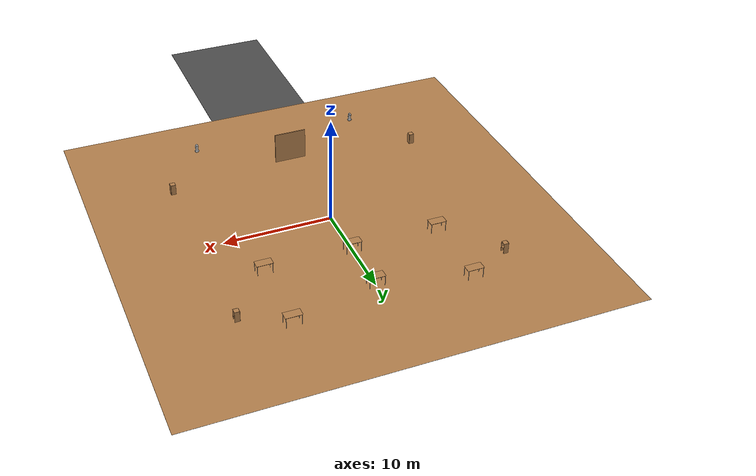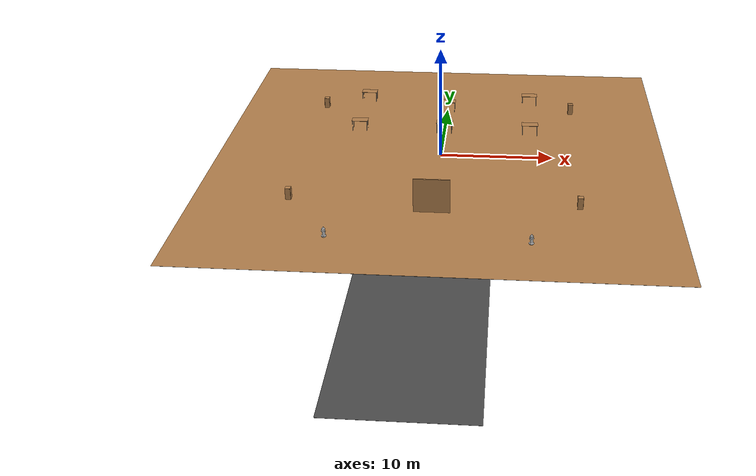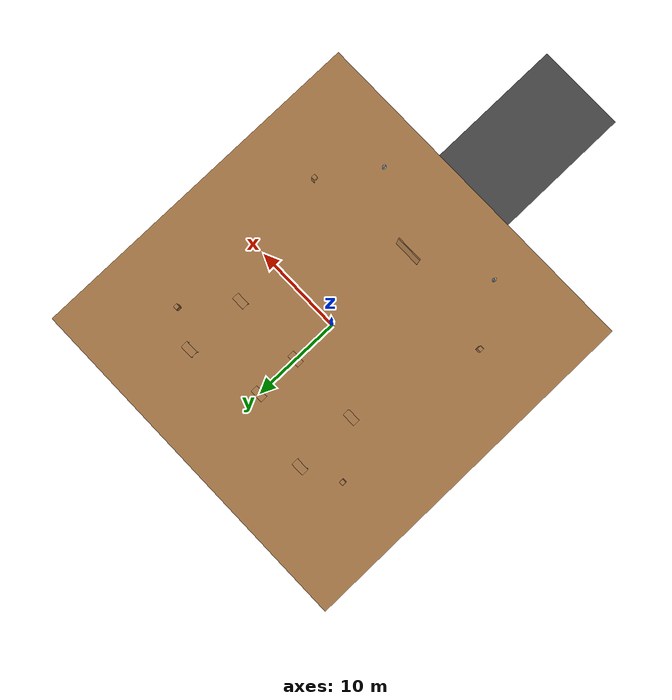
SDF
<sdf version="1.6">
 <world name="hotel_reception_expanded">
  <plugin name="gazebo_ros_state" filename="libgazebo_ros_state.so">
   <ros><namespace>/</namespace></ros>
   <update_rate>1.0</update_rate>
  </plugin>
  <physics type="ode">
   <max_step_size>0.001</max_step_size>
   <real_time_factor>1</real_time_factor>
   <real_time_update_rate>1000</real_time_update_rate>
  </physics>
  <include><uri>model://sun</uri></include>
  <model name="entrance_road">
   <static>true</static>
   <pose>0 -18 0.01 0 0 0</pose>
   <link name="link">
    <collision name="collision"><geometry><box><size>10 35 0.01</size></box></geometry></collision>
    <visual name="visual">
     <geometry><box><size>10 35 0.01</size></box></geometry>
     <material>
      <script><uri>file://media/materials/scripts/gazebo.material</uri><name>Gazebo/Road</name></script>
     </material>
    </visual>
   </link>
  </model>
  <model name="ceramic_floor">
   <static>true</static>
   <link name="link">
    <pose>0 0 0.02 0 0 0</pose>
    <collision name="collision">
     <geometry><box><size>40 40 0.01</size></box></geometry>
     <surface><friction><ode><mu>0.3</mu><mu2>0.3</mu2></ode></friction></surface>
    </collision>
    <visual name="visual">
     <geometry><box><size>40 40 0.01</size></box></geometry>
     <material>
      <script><uri>file://media/materials/scripts/gazebo.material</uri><name>Gazebo/Wood</name></script>
     </material>
    </visual>
   </link>
  </model>
  <model name="entrance_door">
   <static>false</static>
   <pose>0 -10.5 1.5 0 0 0</pose>
   <link name="door">
    <collision name="collision"><geometry><box><size>3 0.1 3</size></box></geometry></collision>
    <visual name="visual">
     <geometry><box><size>3 0.1 3</size></box></geometry>
     <material>
      <script><uri>file://media/materials/scripts/gazebo.material</uri><name>Gazebo/Wood</name></script>
     </material>
    </visual>
    <inertial><mass>10</mass><inertia><ixx>1</ixx><iyy>1</iyy><izz>1</izz></inertia></inertial>
   </link>
  </model>
  <include><uri>model://cabinet</uri><name>cabinet_1</name><pose>-12 -9 0 0 0 0</pose></include>
  <include><uri>model://cabinet</uri><name>cabinet_2</name><pose>12 -9 0 0 0 0</pose></include>
  <include><uri>model://cabinet</uri><name>cabinet_3</name><pose>-12 10 0 0 0 3.14</pose></include>
  <include><uri>model://cabinet</uri><name>cabinet_4</name><pose>12 10 0 0 0 3.14</pose></include>
  <include><uri>model://table</uri><name>lobby_table_1</name><pose>-8 12 0 0 0 0</pose></include>
  <include><uri>model://table</uri><name>lobby_table_2</name><pose>8 12 0 0 0 0</pose></include>
  <include><uri>model://table</uri><name>lobby_table_3</name><pose>-8 5 0 0 0 0</pose></include>
  <include><uri>model://table</uri><name>lobby_table_4</name><pose>8 5 0 0 0 0</pose></include>
  <include><uri>model://table</uri><name>lobby_table_5</name><pose>0 10 0 0 0 0</pose></include>
  <include><uri>model://table</uri><name>lobby_table_6</name><pose>0 5 0 0 0 0</pose></include>
  <include><uri>model://fire_hydrant</uri><name>hydrant_1</name><pose>-8 -15 0 0 0 0</pose></include>
  <include><uri>model://fire_hydrant</uri><name>hydrant_2</name><pose>8 -15 0 0 0 0</pose></include>
  <scene>
   <ambient>0.7 0.7 0.7 1</ambient>
   <background>0.7 0.8 1.0 1</background>
   <shadows>1</shadows>
   <sky><clouds><speed>12</speed></clouds></sky>
  </scene>
 </world>
</sdf>

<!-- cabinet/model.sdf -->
<sdf version="1.5">
  <model name="cabinet">
    <static>true</static>
    <link name="cabinet_bottom_plate">
      <inertial>
        <pose>0 0 -1 0 0 0</pose>
        <inertia>
          <ixx>2.050000</ixx>
          <ixy>0</ixy>
          <ixz>0</ixz>
          <iyy>2.050000</iyy>
          <iyz>0</iyz>
          <izz>2.050000</izz>
        </inertia>
        <mass>25.000000</mass>
      </inertial>
      <collision name="cabinet_bottom_plate_geom">
        <pose>0 0 0.010000 0 0 0</pose>
        <geometry>
          <box>
            <size>0.450000 0.450000 0.020000</size>
          </box>
        </geometry>
      </collision>
      <visual name="cabinet_bottom_plate_geom_visual">
        <pose>0 0 0.010000 0 0 0</pose>
        <geometry>
          <box>
            <size>0.450000 0.450000 0.020000</size>
          </box>
        </geometry>
        <material>
          <script>
            <uri>model://media/materials/scripts/gazebo.material</uri>
            <name>Gazebo/Wood</name>
          </script>
        </material>
      </visual>
      <collision name="cabinet_bottom_plate_geom_cabinet_back_plate">
        <pose>0.235000 0 0.510000 0 0 0</pose>
        <geometry>
          <box>
            <size>0.020000 0.450000 1.020000</size>
          </box>
        </geometry>
      </collision>
      <visual name="cabinet_bottom_plate_geom_cabinet_back_plate_visual">
        <pose>0.235000 0 0.510000 0 0 0</pose>
        <geometry>
          <box>
            <size>0.020000 0.450000 1.020000</size>
          </box>
        </geometry>
        <material>
          <script>
            <uri>model://media/materials/scripts/gazebo.material</uri>
            <name>Gazebo/Wood</name>
          </script>
        </material>
      </visual>
      <collision name="cabinet_bottom_plate_geom_cabinet_left_plate">
        <pose>0 0.235000 0.510000 0 0 0</pose>
        <geometry>
          <box>
            <size>0.450000 0.020000 1.020000</size>
          </box>
        </geometry>
      </collision>
      <visual name="cabinet_bottom_plate_geom_cabinet_left_plate_visual">
        <pose>0 0.235000 0.510000 0 0 0</pose>
        <geometry>
          <box>
            <size>0.450000 0.020000 1.020000</size>
          </box>
        </geometry>
        <material>
          <script>
            <uri>model://media/materials/scripts/gazebo.material</uri>
            <name>Gazebo/Wood</name>
          </script>
        </material>
      </visual>
      <collision name="cabinet_bottom_plate_geom_cabinet_middle_plate">
        <pose>0 0 0.510000 0 0 0</pose>
        <geometry>
          <box>
            <size>0.450000 0.450000 0.020000</size>
          </box>
        </geometry>
      </collision>
      <visual name="cabinet_bottom_plate_geom_cabinet_middle_plate_visual">
        <pose>0 0 0.510000 0 0 0</pose>
        <geometry>
          <box>
            <size>0.450000 0.450000 0.020000</size>
          </box>
        </geometry>
        <material>
          <script>
            <uri>model://media/materials/scripts/gazebo.material</uri>
            <name>Gazebo/Wood</name>
          </script>
        </material>
      </visual>
      <collision name="cabinet_bottom_plate_geom_cabinet_right_plate">
        <pose>0 -0.235000 0.510000 0 0 0</pose>
        <geometry>
          <box>
            <size>0.450000 0.020000 1.020000</size>
          </box>
        </geometry>
      </collision>
      <visual name="cabinet_bottom_plate_geom_cabinet_right_plate_visual">
        <pose>0 -0.235000 0.510000 0 0 0</pose>
        <geometry>
          <box>
            <size>0.450000 0.020000 1.020000</size>
          </box>
        </geometry>
        <material>
          <script>
            <uri>model://media/materials/scripts/gazebo.material</uri>
            <name>Gazebo/Wood</name>
          </script>
        </material>
      </visual>
      <collision name="cabinet_bottom_plate_geom_cabinet_top_plate">
        <pose>0 0 1.010000 0 0 0</pose>
        <geometry>
          <box>
            <size>0.450000 0.450000 0.020000</size>
          </box>
        </geometry>
      </collision>
      <visual name="cabinet_bottom_plate_geom_cabinet_top_plate_visual">
        <pose>0 0 1.010000 0 0 0</pose>
        <geometry>
          <box>
            <size>0.450000 0.450000 0.020000</size>
          </box>
        </geometry>
        <material>
          <script>
            <uri>model://media/materials/scripts/gazebo.material</uri>
            <name>Gazebo/Wood</name>
          </script>
        </material>
      </visual>
    </link>
  </model>
</sdf>

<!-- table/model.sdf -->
<sdf version="1.5">
  <model name="table">
    <static>true</static>
    <link name="link">
      <collision name="surface">
        <pose>0 0 1.0 0 0 0</pose>
        <geometry>
          <box>
            <size>1.5 0.8 0.03</size>
          </box>
        </geometry>
        <surface>
          <friction>
            <ode>
              <mu>0.6</mu>
              <mu2>0.6</mu2>
            </ode>
          </friction>
        </surface>
      </collision>
      <visual name="visual1">
        <pose>0 0 1.0 0 0 0</pose>
        <geometry>
          <box>
            <size>1.5 0.8 0.03</size>
          </box>
        </geometry>
        <material>
          <script>
            <uri>model://media/materials/scripts/gazebo.material</uri>
            <name>Gazebo/Wood</name>
          </script>
        </material>
      </visual>
      <collision name="front_left_leg">
        <pose>0.68 0.38 0.5 0 0 0</pose>
        <geometry>
          <cylinder>
            <radius>0.02</radius>
            <length>1.0</length>
          </cylinder>
        </geometry>
      </collision>
      <visual name="front_left_leg">
        <pose>0.68 0.38 0.5 0 0 0</pose>
        <geometry>
          <cylinder>
            <radius>0.02</radius>
            <length>1.0</length>
          </cylinder>
        </geometry>
        <material>
          <script>
            <uri>model://media/materials/scripts/gazebo.material</uri>
            <name>Gazebo/Grey</name>
          </script>
        </material>
      </visual>
      <collision name="front_right_leg">
        <pose>0.68 -0.38 0.5 0 0 0</pose>
        <geometry>
          <cylinder>
            <radius>0.02</radius>
            <length>1.0</length>
          </cylinder>
        </geometry>
      </collision>
      <visual name="front_right_leg">
        <pose>0.68 -0.38 0.5 0 0 0</pose>
        <geometry>
          <cylinder>
            <radius>0.02</radius>
            <length>1.0</length>
          </cylinder>
        </geometry>
        <material>
          <script>
            <uri>model://media/materials/scripts/gazebo.material</uri>
            <name>Gazebo/Grey</name>
          </script>
        </material>
      </visual>
      <collision name="back_right_leg">
        <pose>-0.68 -0.38 0.5 0 0 0</pose>
        <geometry>
          <cylinder>
            <radius>0.02</radius>
            <length>1.0</length>
          </cylinder>
        </geometry>
      </collision>
      <visual name="back_right_leg">
        <pose>-0.68 -0.38 0.5 0 0 0</pose>
        <geometry>
          <cylinder>
            <radius>0.02</radius>
            <length>1.0</length>
          </cylinder>
        </geometry>
        <material>
          <script>
            <uri>model://media/materials/scripts/gazebo.material</uri>
            <name>Gazebo/Grey</name>
          </script>
        </material>
      </visual>
      <collision name="back_left_leg">
        <pose>-0.68 0.38 0.5 0 0 0</pose>
        <geometry>
          <cylinder>
            <radius>0.02</radius>
            <length>1.0</length>
          </cylinder>
        </geometry>
      </collision>
      <visual name="back_left_leg">
        <pose>-0.68 0.38 0.5 0 0 0</pose>
        <geometry>
          <cylinder>
            <radius>0.02</radius>
            <length>1.0</length>
          </cylinder>
        </geometry>
        <material>
          <script>
            <uri>model://media/materials/scripts/gazebo.material</uri>
            <name>Gazebo/Grey</name>
          </script>
        </material>
      </visual>
    </link>
  </model>
</sdf>

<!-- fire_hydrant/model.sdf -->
<sdf version="1.5">
  <model name="fire_hydrant">
    <static>true</static>
    <link name="link">
      <collision name="collision">
        <geometry>
          <mesh>
            <uri>file://isr-testbed/fire_hydrant/meshes/fire_hydrant.dae</uri>
          </mesh>
        </geometry>
      </collision>
      <visual name="visual">
        <geometry>
          <mesh>
            <uri>file://isr-testbed/fire_hydrant/meshes/fire_hydrant.dae</uri>
          </mesh>
        </geometry>
      </visual>
    </link>
  </model>
</sdf>
